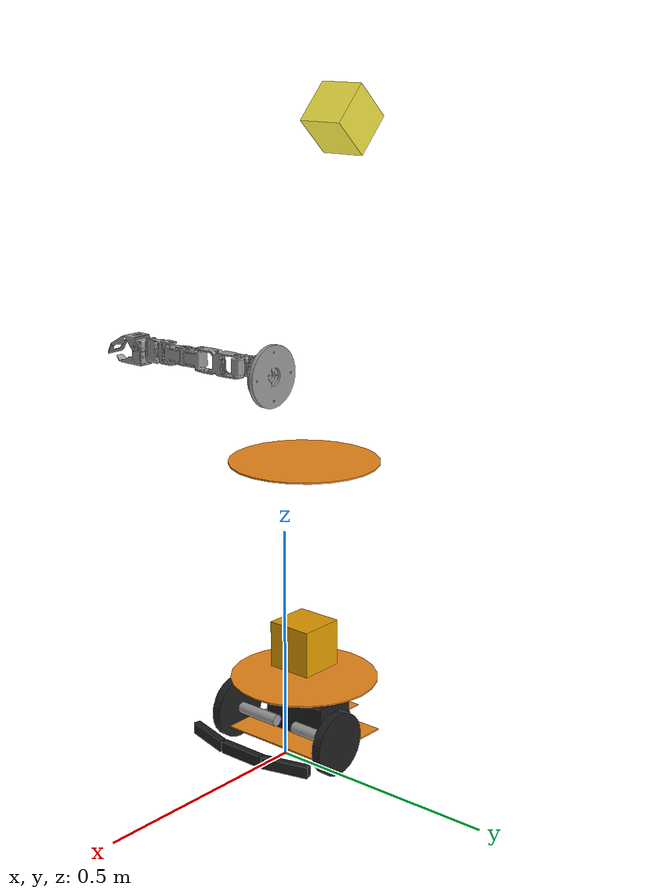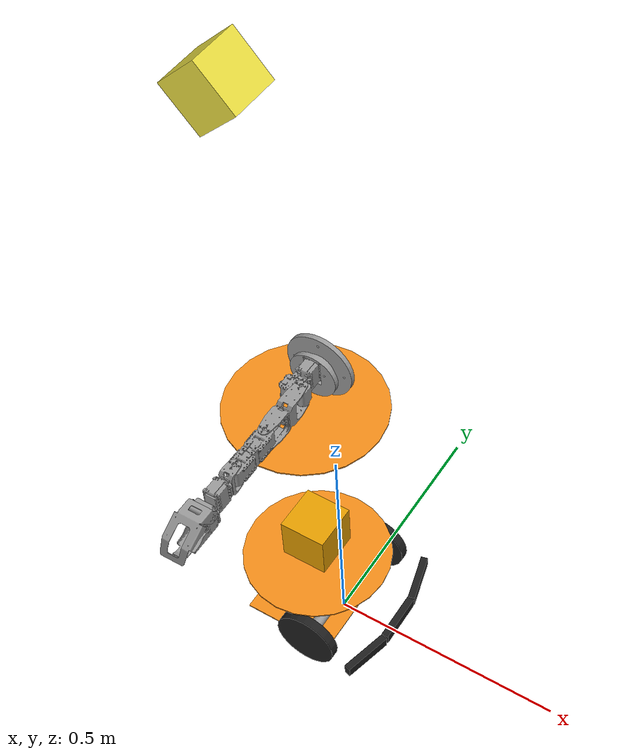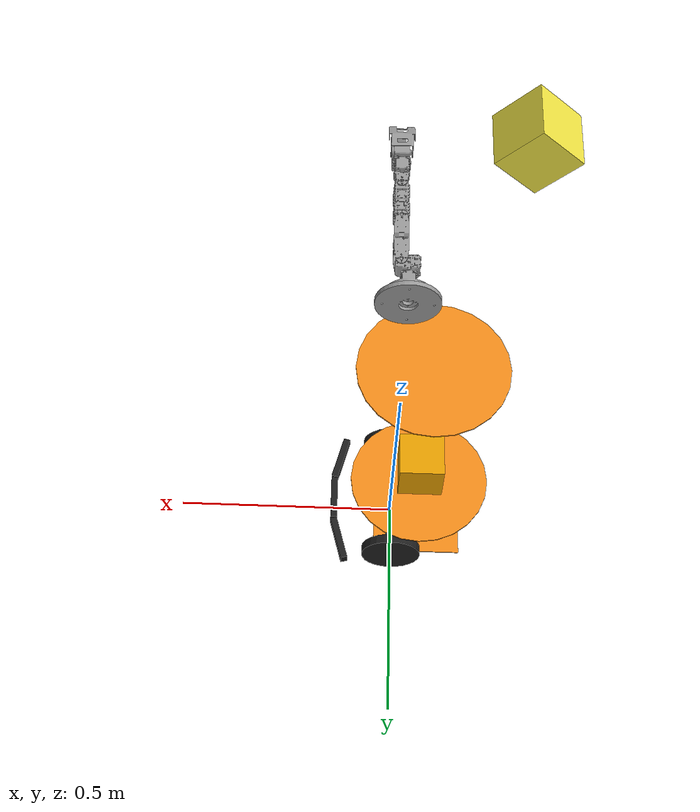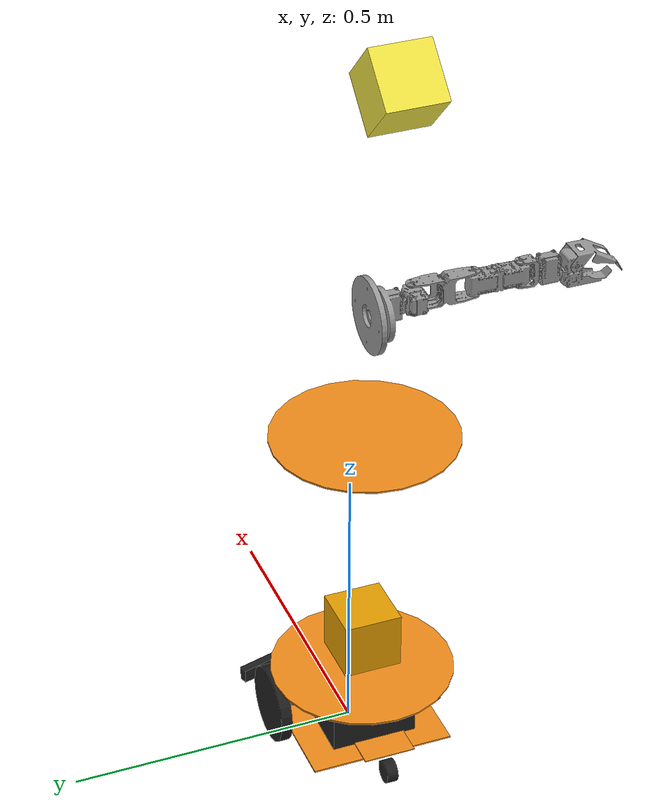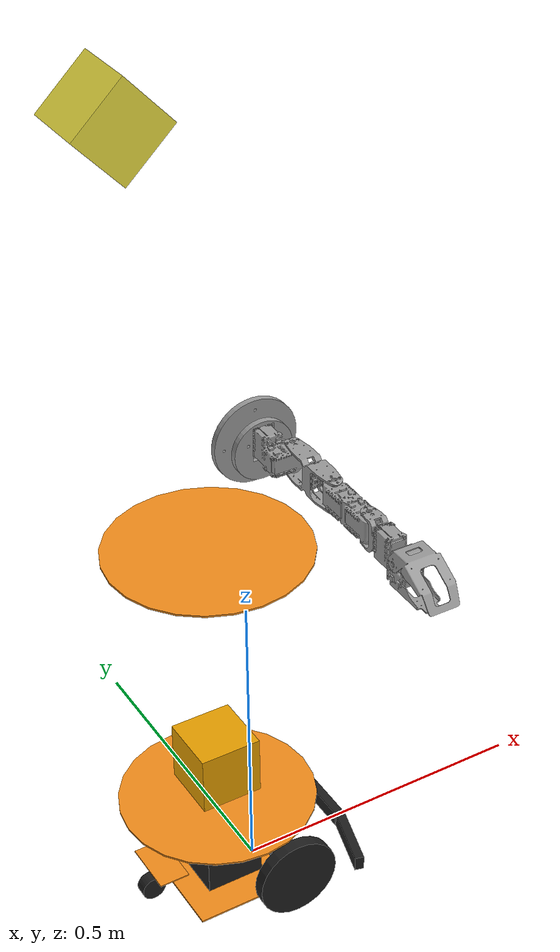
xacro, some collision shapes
<?xml version='1.0'?>

<robot name="hcr" xmlns:xacro="http://www.ros.org/wiki/xacro">

  <!-- some parameters -->
  <xacro:property name="pi" value="3.141592654" />

  <!-- Import all Gazebo-customization elements, including Gazebo colors -->
  <xacro:include filename="$(find hcr_description)/urdf/yacra.gazebo" />

  <xacro:include filename="$(find hcr_description)/urdf/hcr.gazebo" />
  <xacro:include filename="$(find hcr_description)/urdf/materials.xacro"/>
  <xacro:include filename="$(find hcr_description)/urdf/macros.xacro" />

  <link name="base_footprint"/>

  <link name="base_link"/>
  <joint name="joint_base" type="fixed">
    <parent link="base_footprint"/>
    <child link="base_link" />
    <origin xyz="0 0 0.0675" rpy="0 0 0"/>
  </joint>

<!-- LEVEL 0 											-->
<!-- Bumpers, Battery, Suspension, Drives, Wheels,  	-->

  <link name='link_level0'>
    <visual name='level0'>
      <origin xyz="0 0 -0.0015" rpy=" 0 0 0"/>
      <geometry>
        <box size="0.20 0.25 0.003"/>
      </geometry>
      <material name="orange"/>
    </visual>
    <collision name='level0'>
      <origin rpy=" 0 0 0" xyz="-0.0325 0 0" />
      <geometry>
        <box size="0.20 0.25 0.003"/>
      </geometry>
    </collision>
    <inertial>
      <origin rpy=" 0 0 0" xyz="-0.0325 0 0" />
      <mass value="40"/>
      <inertia
        ixx="0.1" ixy="0.0" ixz="0.0"
        iyy="0.1" iyz="0.0"
        izz="0.1" />
    </inertial>
  </link>
  <joint name="joint_level0" type="fixed">
    <parent link="base_link"/>
    <child link="link_level0" />
    <origin xyz="-0.060 0 -0.030" rpy="0 0 0"/>
  </joint>

<!-- Bumpers	 										-->

  <link name="link_bumperCenter">
   <visual name="bumperCenter">
      <origin rpy="0 0 0" xyz="0.025 0 0.0125" />
      <geometry>
        <box size="0.015 0.105 0.025"/>
      </geometry>
      <material name="black"/>
    </visual>
    <collision name="bumperCenter">
      <origin rpy="0 0 0" xyz="0.025 0 0.0125" />
      <geometry>
        <box size="0.015 0.105 0.025"/>
      </geometry>
    </collision>
    <inertial>
      <origin rpy="0 0 0" xyz="0.025 0 0.0125" />
      <mass value="1"/>
      <inertia
        ixx="0.1" ixy="0.0" ixz="0.0"
        iyy="0.1" iyz="0.0"
        izz="0.1" />
    </inertial>
  </link>
  <joint name="joint_bumperCenter" type="fixed" >
    <parent link="link_level0"/>
    <child link="link_bumperCenter"/>
    <origin rpy="0 0 0" xyz="0.17 0 0" />
  </joint>

  <link name="link_bumperLeft">
   <visual name="bumperLeft">
      <origin rpy="0 0 0" xyz="0.025 0 0.0125" />
      <geometry>
        <box size="0.015 0.105 0.025"/>
      </geometry>
      <material name="black"/>
    </visual>
    <collision name="bumperLeft">
      <origin rpy="0 0 0" xyz="0.025 0 0.0125" />
      <geometry>
        <box size="0.015 0.105 0.025"/>
      </geometry>
    </collision>
    <inertial>
      <origin rpy="0 0 0" xyz="0.025 0 0.0125" />
      <mass value="1"/>
      <inertia
        ixx="0.1" ixy="0.0" ixz="0.0"
        iyy="0.1" iyz="0.0"
        izz="0.1" />
    </inertial>
  </link>
  <joint name="joint_bumperLeft" type="fixed" >
    <parent link="link_level0"/>
    <child link="link_bumperLeft"/>
    <origin rpy="0 0 0.262" xyz="0.1575 0.1 0" />
  </joint>

  <link name="link_bumperRight">
   <visual name="bumperRight">
      <origin rpy="0 0 0" xyz="0.025 0 0.0125" />
      <geometry>
        <box size="0.015 0.105 0.025"/>
      </geometry>
      <material name="black"/>
    </visual>
    <collision name="bumperRight">
      <origin rpy="0 0 0" xyz="0.025 0 0.0125" />
      <geometry>
        <box size="0.015 0.105 0.025"/>
      </geometry>
    </collision>
    <inertial>
      <origin rpy="0 0 0" xyz="0.025 0 0.0125" />
      <mass value="1"/>
      <inertia
        ixx="0.1" ixy="0.0" ixz="0.0"
        iyy="0.1" iyz="0.0"
        izz="0.1" />
    </inertial>
  </link>
  <joint name="joint_bumperRight" type="fixed" >
    <parent link="link_level0"/>
    <child link="link_bumperRight"/>
    <origin rpy="0 0 -0.262" xyz="0.1575 -0.1 0" />
  </joint>

<!-- Battery	 										-->
  <link name="link_battery">
   <visual name="battery">
      <origin rpy="0 0 0" xyz="0 0 0" />
      <geometry>
        <box size="0.095 0.150 0.075"/>
      </geometry>
      <material name="black"/>
    </visual>
    <collision name="battery">
      <origin rpy="0 0 0" xyz="0 0 0" />
      <geometry>
        <box size="0.095 0.150 0.075"/>
      </geometry>
    </collision>
    <inertial>
      <origin rpy="0.0475 0.075 0.0375" xyz="0 0 0" />
      <mass value="1"/>
      <inertia
        ixx="0.05625" ixy="0.0" ixz="0.0"
        iyy="0.0293" iyz="0.0"
        izz="0.06305" />
    </inertial>
  </link>
  <joint name="joint_battery" type="fixed" >
    <parent link="link_level0"/>
    <child link="link_battery"/>
    <origin rpy="0 0 0" xyz="-0.0125 0 0.0375" />
  </joint>

<!-- Suspension 										-->

  <link name="link_wheelSuspensionPlate">
   <visual name="wheelSuspensionCenter">
      <origin rpy="0 0 0" xyz="0 0 0.001" />
      <geometry>
        <box size="0.05 0.09 0.002"/>
      </geometry>
      <material name="orange"/>
    </visual>
    <collision name="wheelSuspensionPlate">
      <origin rpy="0 0 0" xyz="0 0 0.001" />
      <geometry>
        <box size="0.05 0.09 0.002"/>
      </geometry>
    </collision>
    <inertial>
      <origin rpy="0 0 0" xyz="0 0 0.001" />
      <mass value="1"/>
      <inertia
        ixx="0.1" ixy="0.0" ixz="0.0"
        iyy="0.1" iyz="0.0"
        izz="0.1" />
    </inertial>
  </link>
  <joint name="joint_wheelSuspensionPlate" type="fixed" >
    <parent link="link_level0"/>
    <child link="link_wheelSuspensionPlate"/>
    <origin rpy="0 0 0" xyz="-0.105 0 0.02" />
  </joint>

  <link name="link_suspensionCenter">
   <visual name="suspensionCenter">
      <origin rpy="0 0 0" xyz="0 0 -0.0025" />
      <geometry>
        <cylinder radius="0.015" length="0.005"/>
      </geometry>
      <material name="black"/>
    </visual>
    <collision name="suspensionCenter">
      <origin rpy="0 0 0" xyz="0 0 -0.0025" />
      <geometry>
        <cylinder radius="0.015" length="0.005"/>
      </geometry>
    </collision>
    <inertial>
      <origin rpy="0 0 0" xyz="0 0 -0.0025" />
      <mass value="1"/>
      <inertia
        ixx="0.1" ixy="0.0" ixz="0.0"
        iyy="0.1" iyz="0.0"
        izz="0.1" />
    </inertial>
 </link>
  <joint name="joint_suspensionCenter" type="fixed" >
    <parent link="link_level0"/>
    <child link="link_suspensionCenter"/>
    <origin rpy="0 0 0" xyz="-0.105 0 0.02" />
    <axis rpy="0 0 0" xyz="0 0 1" />
  </joint>

<!-- Drives		 										-->

  <link name="link_driveLeft">
   <visual name="driveLeft">
      <origin rpy="1.5707 0 0" xyz="0 -0.05 0" />
      <geometry>
        <cylinder radius="0.0125" length="0.1"/>
      </geometry>
      <material name="grey"/>
    </visual>
    <collision name="driveLeft">
      <origin rpy="1.5707 0 0" xyz="0 -0.05 0" />
      <geometry>
        <cylinder radius="0.0125" length="0.1"/>
      </geometry>
    </collision>
    <inertial>
      <origin rpy="1.5707 0 0" xyz="0 -0.05 0" />
      <mass value="1"/>
      <inertia
        ixx="0.1" ixy="0.0" ixz="0.0"
        iyy="0.1" iyz="0.0"
        izz="0.1" />
    </inertial>
  </link>
  <joint name="joint_driveLeft" type="fixed" >
    <parent link="link_level0"/>
    <child link="link_driveLeft"/>
    <origin rpy="0 0 0" xyz="0.06 0.125 0.03" />
  </joint>

  <link name="link_driveRight">
   <visual name="driveRight">
      <origin rpy="1.5707 0 0" xyz="0 0.05 0" />
      <geometry>
        <cylinder radius="0.0125" length="0.1"/>
      </geometry>
      <material name="grey"/>
    </visual>
    <collision name="driveRight">
      <origin rpy="1.5707 0 0" xyz="0 0.05 0" />
      <geometry>
        <cylinder radius="0.0125" length="0.1"/>
      </geometry>
    </collision>
    <inertial>
      <origin rpy="1.5707 0 0" xyz="0 0.05 0" />
      <mass value="1"/>
      <inertia
        ixx="0.1" ixy="0.0" ixz="0.0"
        iyy="0.1" iyz="0.0"
        izz="0.1" />
    </inertial>
  </link>
  <joint name="joint_driveRight" type="fixed" >
    <parent link="link_level0"/>
    <child link="link_driveRight"/>
    <origin rpy="0 0 0" xyz="0.06 -0.125 0.03" />
  </joint>

<!-- Wheels		 										-->

  <link name="link_wheelLeft">
   <visual name="wheelLeft">
      <origin rpy="1.5707 0 0" xyz="0 0 0" />
      <geometry>
        <cylinder radius="0.0675" length="0.02"/>
      </geometry>
      <material name="Black"/>
    </visual>
    <collision name="wheelLeft">
      <origin rpy="1.5707 0 0" xyz="0 0 0" />
      <geometry>
        <cylinder radius="0.0675" length="0.02"/>
      </geometry>
    </collision>
    <inertial>
      <origin rpy="1.5707 0 0" xyz="0 0 0" />
      <mass value="1"/>
      <inertia
        ixx="0.1" ixy="0.0" ixz="0.0"
        iyy="0.1" iyz="0.0"
        izz="0.1" />
    </inertial>
  </link>
  <joint name="joint_wheelLeft" type="continuous" >
    <parent link="link_level0"/>
    <child link="link_wheelLeft"/>
    <origin rpy="0 0 0" xyz="0.06 0.14 0.03" />
    <axis rpy="0 0 0" xyz="0 1 0" />
    <limit effort="10000" velocity="1000"/>
    <dynamics damping="0.7"/>
  </joint>
  <transmission name="transmission_wheelLeft">
    <type>transmission_interface/SimpleTransmission</type>
    <joint name="joint_wheelLeft">
        <hardwareInterface>hardware_interface/VelocityJointInterface</hardwareInterface>
    </joint>
    <actuator name="actuator_wheelLeft">
      <hardwareInterface>VelocityJointInterface</hardwareInterface>
      <mechanicalReduction>1</mechanicalReduction>
    </actuator>
  </transmission>

  <link name="link_wheelRight">
   <visual name="wheelRight">
      <origin rpy="1.5707 0 0" xyz="0 0 0" />
      <geometry>
        <cylinder radius="0.0675" length="0.02"/>
      </geometry>
      <material name="Black"/>
    </visual>
    <collision name="wheelRight">
      <origin rpy="1.5707 0 0" xyz="0 0 0" />
      <geometry>
        <cylinder radius="0.0675" length="0.02"/>
      </geometry>
    </collision>
    <inertial>
      <origin rpy="1.5707 0 0" xyz="0 0 0" />
      <mass value="1"/>
      <inertia
        ixx="0.1" ixy="0.0" ixz="0.0"
        iyy="0.1" iyz="0.0"
        izz="0.1" />
    </inertial>
  </link>
  <joint name="joint_wheelRight" type="continuous" >
    <parent link="link_level0"/>
    <child link="link_wheelRight"/>
    <origin rpy="0 0 0" xyz="0.06 -0.14 0.03" />
    <axis rpy="0 0 0" xyz="0 1 0" />
    <limit effort="10000" velocity="1000"/>
    <dynamics damping="0.7"/>
  </joint>
  <transmission name="transmission_wheelRight">
    <type>transmission_interface/SimpleTransmission</type>
    <joint name="joint_wheelRight">
        <hardwareInterface>hardware_interface/VelocityJointInterface</hardwareInterface>
    </joint>
    <actuator name="actuator_wheelRight">
      <hardwareInterface>VelocityJointInterface</hardwareInterface>
      <mechanicalReduction>1</mechanicalReduction>
    </actuator>
  </transmission>

  <link name="link_wheelCenter">
   <visual name="wheelCenter">
      <origin rpy="1.5707 0 0" xyz="0 0 0" />
      <geometry>
        <cylinder radius="0.02" length="0.02"/>
      </geometry>
      <material name="Black"/>
    </visual>
    <collision name="wheelCenter">
        <origin rpy="1.5707 0 0" xyz="0 0 0" />
      <geometry>
        <cylinder radius="0.02" length="0.02"/>
      </geometry>
    </collision>
    <inertial>
      <origin rpy="1.5707 0 0" xyz="0 0 0" />
      <mass value="1"/>
      <inertia
        ixx="0.1" ixy="0.0" ixz="0.0"
        iyy="0.1" iyz="0.0"
        izz="0.1" />
    </inertial>
  </link>
  <joint name="joint_wheelCenter" type="fixed" >
    <parent link="link_suspensionCenter"/>
    <child link="link_wheelCenter"/>
    <origin rpy="0 0 0" xyz="-0.02 0 -0.0375" />
    <axis rpy="0 0 0" xyz="0 1 0" />
  </joint>

<!-- LEVEL 1 											-->
<!-- LIDAR, (Hokuyo)									-->
  <link name='link_level1'>
    <visual name='level1'>
      <origin rpy="0 0 0" xyz="0 0 -0.0015" />
      <geometry>
        <cylinder radius="0.1575" length="0.003"/>
      </geometry>
      <material name="orange"/>
    </visual>
    <collision name='level1'>
      <origin rpy="0 0 0" xyz="0 0 -0.0015" />
      <geometry>
        <cylinder radius="0.1575" length="0.003"/>
      </geometry>
    </collision>
    <inertial>
      <origin rpy="0 0 0" xyz="0 0 -0.0015" />
      <mass value="1"/>
      <inertia
        ixx="0.1" ixy="0.0" ixz="0.0"
        iyy="0.1" iyz="0.0"
        izz="0.1" />
    </inertial>
  </link>
  <joint name="joint_level1" type="fixed" >
    <parent link="link_level0"/>
    <child link="link_level1"/>
    <origin rpy="0 0 0" xyz="0 0 0.123" />
  </joint>

<!-- LIDAR Laser 										-->
<link name="link_lidar"/>
  <joint name="joint_lidar" type="fixed">
    <parent link="link_level1"/>
    <child link="link_lidar" />
    <origin xyz="0 0 0.074" rpy="0 0 1.570796327"/>
  </joint>

<!-- Hokuyo Laser 										-->
  <link name="link_laserHokuyo">
    <visual>
      <origin xyz="0 0 0" rpy="0 0 0"/>
      <geometry>
        <mesh filename="package://hcr_description/meshes/hokuyo.dae"/>
      </geometry>
    </visual>
    <collision>
      <origin xyz="0 0 0" rpy="0 0 0"/>
      <geometry>
        <box size="0.1 0.1 0.1"/>
      </geometry>
    </collision>
    <inertial>
      <origin rpy="0 0 0" xyz="0 0 0" />
      <mass value="1e-5" />
      <inertia
        ixx="1e-6" ixy="0" ixz="0"
        iyy="1e-6" iyz="0"
        izz="1e-6" />
    </inertial>
  </link>
  <joint name="joint_laserHokuyo" type="fixed">
    <parent link="link_level1"/>
    <child link="link_laserHokuyo"/>
    <origin rpy="0 0 0" xyz="0 0 0.074" />
    <axis xyz="0 1 0" />
  </joint>

<!-- LEVEL 2 											-->
<!-- Top construction, camera kinect, robotarm yacra-->
  <link name='link_level2'>
    <visual name='level2'>
      <origin rpy="0 0 0" xyz="0 0 -0.0015" />
      <geometry>
        <cylinder radius="0.1575" length="0.003"/>
      </geometry>
      <material name="orange"/>
    </visual>
    <collision name='level2'>
      <origin rpy="0 0 0" xyz="0 0 -0.0015" />
      <geometry>
        <cylinder radius="0.1575" length="0.003"/>
      </geometry>
    </collision>
    <inertial>
      <origin rpy="0 0 0" xyz="0 0 -0.0015" />
      <mass value="1"/>
      <inertia
        ixx="0.1" ixy="0.0" ixz="0.0"
        iyy="0.1" iyz="0.0"
        izz="0.1" />
    </inertial>
  </link>
  <joint name="joint_level2" type="fixed" >
    <parent link="link_level1"/>
    <child link="link_level2"/>
    <origin rpy="0 0 0" xyz="0 0 0.478" />
  </joint>

  <link name="link_topFrame"/>
  <joint name="joint_topFrame" type="fixed">
    <parent link="link_level2"/>
    <child link="link_topFrame" />
    <origin xyz="-0.100 0 -0.003" rpy="0 0 0"/>
  </joint>

  <link name="camera_link">
    <visual>
      <origin xyz="0 0 0" rpy="0 0 0"/>
      <geometry>
        <mesh filename="package://hcr_description/meshes/kinect.dae"/>
      </geometry>
    </visual>
    <collision>
      <origin xyz="0 0 0" rpy="0 0 0"/>
      <geometry>
        <box size="0.1 0.1 0.1"/>
      </geometry>
    </collision>
    <inertial>
      <origin rpy="0 0 0" xyz="0 0 0" />
      <mass value="1e-5" />
      <inertia
        ixx="1e-6" ixy="0" ixz="0"
        iyy="1e-6" iyz="0"
        izz="1e-6" />
    </inertial>
  </link>
  <joint name="joint_camera" type="fixed">
    <parent link="link_topFrame"/>
    <child link="camera_link" />
     <!-- ry = 45 -->
    <!-- ry = ca. 47 grad -->
    <origin xyz="-0.015 0 0.686" rpy="0 ${0.8203} 0"/>
  </joint>

<!--      ARM SYSTEM          -->
  <joint name="joint_armFixed" type="fixed">
    <parent link="link_topFrame"/>
    <child link="link_armBase" />
    <origin xyz="0.1625 -0.020 0.185" rpy="1.570796 3.14159 0"/>
  </joint>

  <link name="link_armBase"/>
  <joint name="joint_armBase" type="fixed">
    <parent link="link_armBase"/>
    <child link="link_arm1"/>
    <origin xyz="0 0 0" rpy="0 0 0"/>
  </joint>

  <!-- link 1 -->
  <link name="link_arm1">
    <collision>
      <origin xyz="-0.0 -0.0666 0" rpy="0 0 0"/>
      <geometry>
        <mesh filename="package://hcr_description/meshes/1.STL" scale="0.001 0.001 0.001"/>
      </geometry>
    </collision>

    <visual>
      <origin xyz="-0.0 -0.0666 0" rpy="0 0 0"/>
      <geometry>
        <mesh filename="package://hcr_description/meshes/1.STL" scale="0.001 0.001 0.001"/>
      </geometry>
      <material name="grey"/>
    </visual>

    <inertial>
      <origin xyz="-0.80 0.00000 -0.8223" rpy="0 0 0"/>
      <mass value="0.001"/>
      <inertia ixx="1.0" ixy="0.0" ixz="0.0" iyy="1.0" iyz="0.0" izz="1.0" />
    </inertial>
  </link>

  <!-- Joint 1 -->
  <joint name="joint_arm1" type="revolute">
    <parent link="link_arm1"/>
    <child link="link_arm2"/>
    <origin xyz="0.0 0.0 0.0" rpy="0 0 0"/>
    <axis xyz="0 0 1"/>
    <limit velocity="6.5" effort="1000" lower="${-pi}" upper="${pi}" />
    <dynamics damping="0.7"/>
  </joint>

  <transmission name="tranmission_arm1">
    <type>transmission_interface/SimpleTransmission</type>
    <joint name="joint_arm1">
      <hardwareInterface>hardware_interface/EffortJointInterface</hardwareInterface>
    </joint>
    <actuator name="actuartor_arm1">
      <hardwareInterface>hardware_interface/EffortJointInterface</hardwareInterface>
      <mechanicalReduction>1</mechanicalReduction>
    </actuator>
  </transmission>

  <!-- link 2 -->
  <link name="link_arm2">
    <collision>
      <origin xyz="-0.015 -0.063 -0.008" rpy="0 0 0"/>
      <geometry>
        <mesh filename="package://hcr_description/meshes/2.STL" scale="0.001 0.001 0.001"/>
      </geometry>
    </collision>

    <visual>
      <origin xyz="-0.015 -0.063 -0.008" rpy="0 0 0"/>
      <geometry>
        <mesh filename="package://hcr_description/meshes/2.STL" scale="0.001 0.001 0.001"/>
      </geometry>
      <material name="grey"/>
    </visual>

    <inertial>
      <origin xyz="0.00000 0.00000 0.00283" rpy="0 0 0"/>
      <mass value="0.94658"/>
      <inertia ixx="1.0" ixy="0.0" ixz="0.0" iyy="1.0" iyz="0.0" izz="1.0" />
    </inertial>
  </link>

  <!-- Joint 2 -->
  <joint name="joint_arm2" type="revolute">
    <parent link="link_arm2"/>
    <child link="link_arm3"/>
    <origin xyz="-0.01475 -0.01475 0.090" rpy="0 0 0"/>
    <axis xyz="0 1 0"/>
    <limit velocity="6.5" effort="1000" lower="-2.74276" upper="1.76715" />
    <dynamics damping="0.7"/>
  </joint>

  <transmission name="transmission_arm2">
    <type>transmission_interface/SimpleTransmission</type>
    <joint name="joint_arm2">
      <hardwareInterface>hardware_interface/EffortJointInterface</hardwareInterface>
    </joint>
    <actuator name="actuartor_arm2">
      <hardwareInterface>hardware_interface/EffortJointInterface</hardwareInterface>
      <mechanicalReduction>1</mechanicalReduction>
    </actuator>
  </transmission>

  <!-- link 3 -->
  <link name="link_arm3">
    <collision>
      <origin xyz="-0.00006 -0.048 -0.0980" rpy="0 0 0"/>
      <geometry>
        <mesh filename="package://hcr_description/meshes/3.STL" scale="0.001 0.001 0.001"/>
      </geometry>
    </collision>

    <visual>
      <origin xyz="-0.00006 -0.048 -0.0980" rpy="0 0 0"/>
      <geometry>
        <mesh filename="package://hcr_description/meshes/3.STL" scale="0.001 0.001 0.001"/>
      </geometry>
      <material name="grey"/>
    </visual>

    <inertial>
      <origin xyz="0.01768 -0.06881 0.00524" rpy="0 0 0"/>
      <mass value="1.30260"/>
      <inertia ixx="1.0" ixy="0.0" ixz="0.0" iyy="1.0" iyz="0.0" izz="1.0" />
    </inertial>
  </link>

  <!-- Joint 3 -->
  <joint name="joint_arm3" type="revolute">
    <parent link="link_arm3"/>
    <child link="link_arm4"/>
    <origin xyz="0.00000 0.00000 0.1074" rpy="0 0 0"/>
    <axis xyz="0 1 0"/>
    <limit velocity="6.5" effort="1000" lower="-2.83480" upper="2.99433" />
    <dynamics damping="0.7"/>
  </joint>

  <transmission name="transmission_arm3">
    <type>transmission_interface/SimpleTransmission</type>
    <joint name="joint_arm3">
      <hardwareInterface>hardware_interface/EffortJointInterface</hardwareInterface>
    </joint>
    <actuator name="actuartor_arm3">
      <hardwareInterface>hardware_interface/EffortJointInterface</hardwareInterface>
      <mechanicalReduction>1</mechanicalReduction>
    </actuator>
  </transmission>

  <!-- link 4 -->
  <link name="link_arm4">
    <collision>
      <origin xyz="0 -0.048 -0.20569" rpy="0 0 0"/>
      <geometry>
        <mesh filename="package://hcr_description/meshes/4-neu.STL" scale="0.001 0.001 0.001"/>
      </geometry>
    </collision>

    <visual>
      <origin xyz="0 -0.048 -0.20569" rpy="0 0 0"/>
      <geometry>
        <mesh filename="package://hcr_description/meshes/4-neu.STL" scale="0.001 0.001 0.001"/>
      </geometry>
      <material name="grey"/>
    </visual>

    <inertial>
      <origin xyz="0.12475 -0.05716 0.02979" rpy="0 0 0"/>
      <mass value="1.15977"/>
      <inertia ixx="1.0" ixy="0.0" ixz="0.0" iyy="1.0" iyz="0.0" izz="1.0" />
    </inertial>
  </link>

  <!-- Joint 4 -->
  <joint name="joint_arm4" type="revolute">
    <parent link="link_arm4"/>
    <child link="link_arm5"/>
   <origin xyz="0.00 0.00 0.08300" rpy="0 0 0"/>
    <axis xyz="0 1 0"/>
    <limit velocity="6.5" effort="1000" lower="-2.03713" upper="2.13530" />
    <dynamics damping="0.7"/>
  </joint>

  <transmission name="transmission_arm4">
    <type>transmission_interface/SimpleTransmission</type>
    <joint name="joint_arm4">
      <hardwareInterface>hardware_interface/EffortJointInterface</hardwareInterface>
    </joint>
    <actuator name="actuartor_arm4">
      <hardwareInterface>hardware_interface/EffortJointInterface</hardwareInterface>
      <mechanicalReduction>1</mechanicalReduction>
    </actuator>
  </transmission>

  <!-- link 5 -->
  <link name="link_arm5">
    <collision>
      <origin xyz="0 -0.048 -0.28890" rpy="0 0 0"/>
      <geometry>
        <mesh filename="package://hcr_description/meshes/5.STL" scale="0.001 0.001 0.001"/>
      </geometry>
    </collision>

    <visual>
      <origin xyz="0 -0.048 -0.28890" rpy="0 0 0"/>
      <geometry>
        <mesh filename="package://hcr_description/meshes/5.STL" scale="0.001 0.001 0.001"/>
      </geometry>
      <material name="grey"/>
    </visual>

    <inertial>
      <origin xyz="0.05642 -0.00217 0.00002" rpy="0 0 0"/>
      <mass value="0.44688"/>
      <inertia ixx="1.0" ixy="0.0" ixz="0.0" iyy="1.0" iyz="0.0" izz="1.0" />
    </inertial>
  </link>

  <!-- Joint 5 -->
  <joint name="joint_arm5" type="revolute">
    <parent link="link_arm5"/>
    <child link="link_arm6"/>
    <origin xyz="0.000 0.01785 0.06775" rpy="0 0 0"/>
    <axis xyz="0 0 1"/>
    <limit velocity="6.5" effort="1000" lower="${-pi}" upper="${pi}" />
    <dynamics damping="0.7"/>
  </joint>

  <transmission name="transmission_arm5">
    <type>transmission_interface/SimpleTransmission</type>
    <joint name="joint_arm5">
      <hardwareInterface>hardware_interface/EffortJointInterface</hardwareInterface>
    </joint>
    <actuator name="actuartor_arm5">
      <hardwareInterface>hardware_interface/EffortJointInterface</hardwareInterface>
      <mechanicalReduction>1</mechanicalReduction>
    </actuator>
  </transmission>

  <!-- link 6 -->
  <link name="link_arm6">
    <collision>
      <origin xyz="0 -0.063006 -0.35695008" rpy="0 0 0"/>
      <geometry>
        <mesh filename="package://hcr_description/meshes/6.STL" scale="0.001 0.001 0.001"/>
      </geometry>
    </collision>

    <visual>
      <origin xyz="0 -0.063006 -0.35695008" rpy="0 0 0"/>
      <geometry>
        <mesh filename="package://hcr_description/meshes/6.STL" scale="0.001 0.001 0.001"/>
      </geometry>
      <material name="grey"/>
    </visual>

    <inertial>
      <origin xyz="0.06831 -0.04457 0.00000" rpy="0 0 0"/>
      <mass value="0.43273"/>
      <inertia ixx="1.0" ixy="0.0" ixz="0.0" iyy="1.0" iyz="0.0" izz="1.0" />
    </inertial>
  </link>

  <!-- Joint 6 -->
  <joint name="joint_arm6" type="revolute">
    <parent link="link_arm6"/>
    <child link="link_armEndEff"/>
    <origin xyz="0.00 -0.0207 0.02400" rpy="0 0 0"/>
    <axis xyz="1 0 0"/>
    <limit velocity="6.5" effort="1000" lower="${-pi*0.15}" upper="${pi*0.4}" />
    <dynamics damping="0.7"/>
  </joint>

  <transmission name="transmission_arm6">
    <type>transmission_interface/SimpleTransmission</type>
    <joint name="joint_arm6">
      <hardwareInterface>hardware_interface/EffortJointInterface</hardwareInterface>
    </joint>
    <actuator name="actuartor_arm6">
      <hardwareInterface>hardware_interface/EffortJointInterface</hardwareInterface>
      <mechanicalReduction>1</mechanicalReduction>
    </actuator>
  </transmission>

  <!-- end link -->
  <link name="link_armEndEff">
    <collision>
      <origin xyz="0 -0.0418 -0.380" rpy="0 0 0"/>
      <geometry>
        <mesh filename="package://hcr_description/meshes/7.STL" scale="0.001 0.001 0.001"/>
      </geometry>
    </collision>

    <visual>
      <origin xyz="0 -0.0418 -0.380" rpy="0 0 0"/>
      <geometry>
        <mesh filename="package://hcr_description/meshes/7.STL" scale="0.001 0.001 0.001"/>
      </geometry>
      <material name="grey"/>
    </visual>

    <inertial>
      <origin xyz="0.00337 0.00000 0.00000" rpy="0 0 0"/>
      <mass value="0.01919"/>
      <inertia ixx="1.0" ixy="0.0" ixz="0.0" iyy="1.0" iyz="0.0" izz="1.0" />
    </inertial>
  </link>

  <!-- TCP -->
  <joint name="joint_TCP" type="fixed">
    <parent link="link_arm6"/>
    <child link="link_TCP"/>
    <origin xyz="0.0 -0.04 0.06" rpy="0 0 0"/>
  </joint>
  <link name="link_TCP">
  </link>

</robot>
